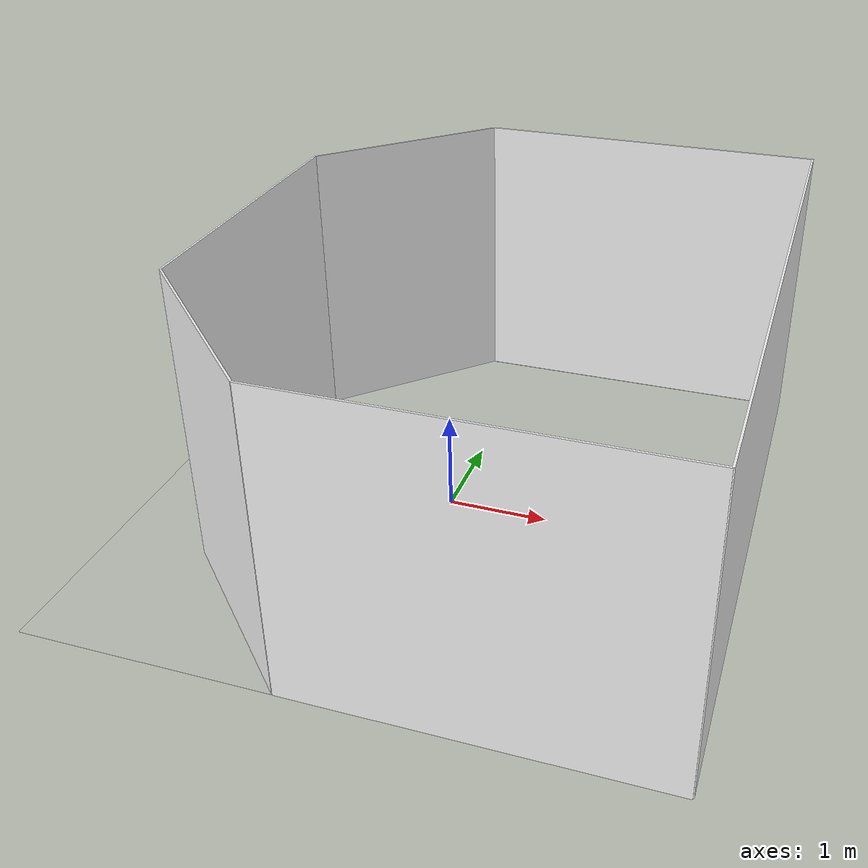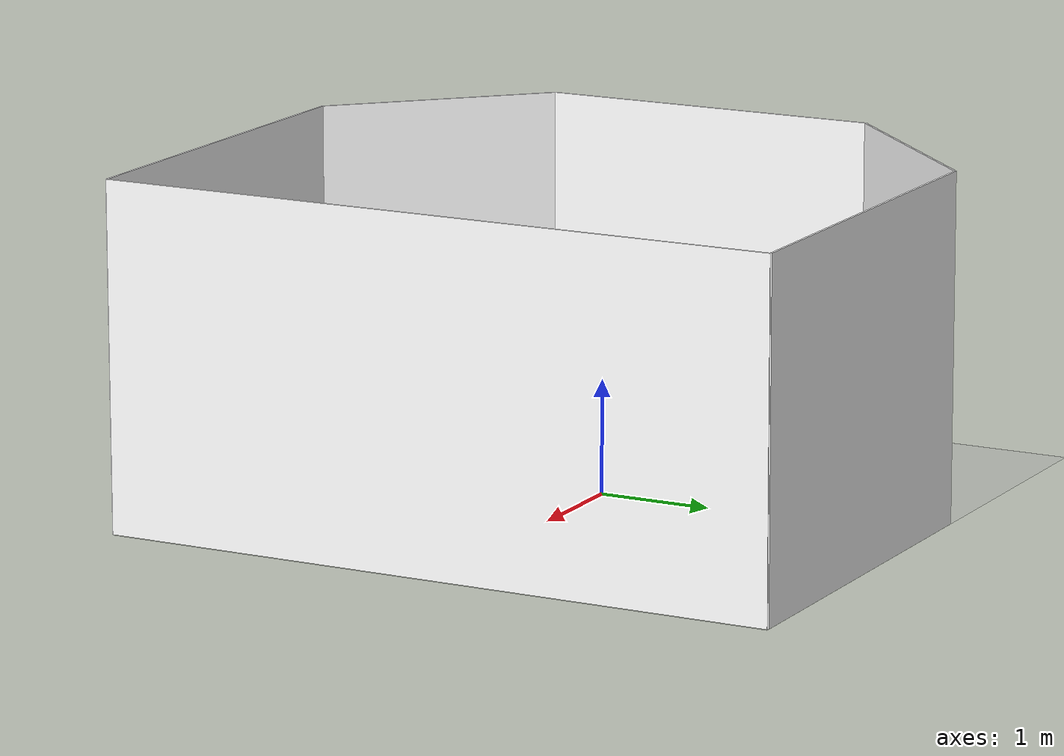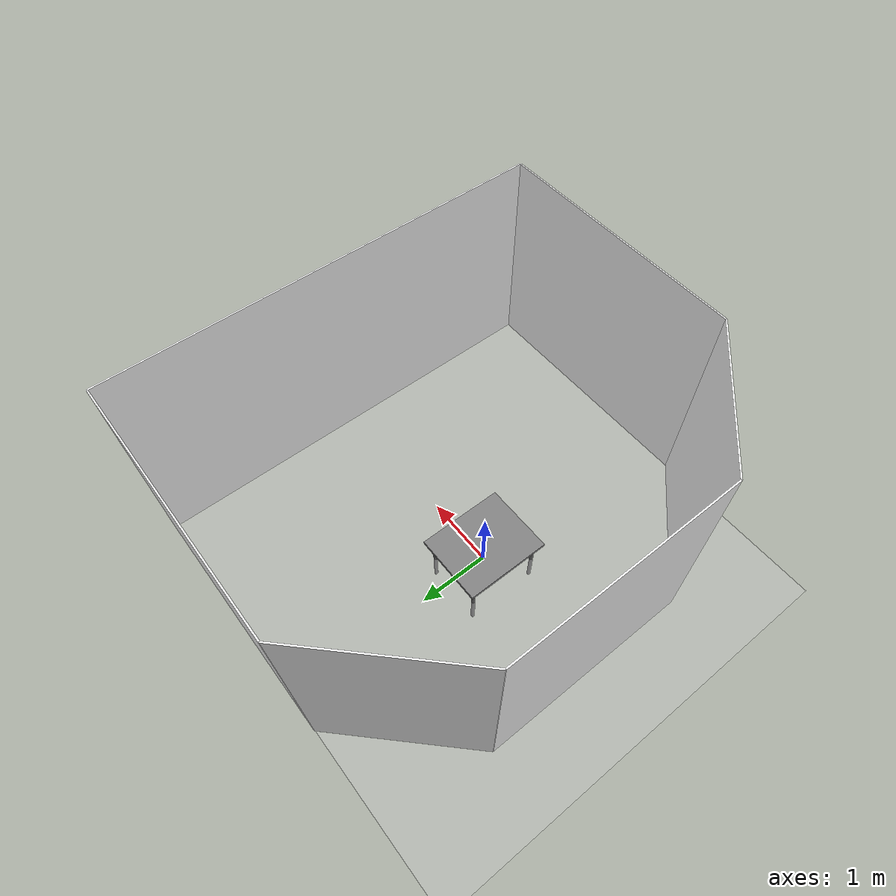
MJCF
<mujoco model="table_arena">
  <asset>
    <!-- Skybox -->
    <texture builtin="gradient" height="256" rgb1=".9 .9 1." rgb2=".2 .3 .4" type="skybox" width="256"/>

    <!-- Floor and Wall Materials (without PNG files) -->
    <material name="floorplane_mat" specular="0" shininess="0" reflectance="0.1" rgba="0.8 0.8 0.8 1"/>
    <material name="wall_mat" specular="0" shininess="0" reflectance="0" rgba="0.95 0.95 0.95 1"/>

    <!-- Table Materials (without PNG files) -->
    <material name="table_top_mat" specular="0.1" shininess="0.1" reflectance="0.2" rgba="0.7 0.7 0.7 1"/>
    <material name="table_leg_mat" specular="0.8" shininess="0.8" reflectance="0.5" rgba="0.4 0.4 0.4 1"/>

  </asset>
  <worldbody>
    <!-- Floor -->
    <geom condim="3" group="1" material="floorplane_mat" name="floor" pos="0 0 0" size="3 3 .125" type="plane"/>
    <!-- Walls (visual only) -->
    <geom pos="-1.25 2.25 1.5" quat="0.6532815 0.6532815 0.2705981 0.2705981" size="1.06 1.5 0.01" type="box" conaffinity="0" contype="0" group="1" name="wall_leftcorner_visual" material="wall_mat"/>
    <geom pos="-1.25 -2.25 1.5" quat="0.6532815 0.6532815 -0.2705981 -0.2705981" size="1.06 1.5 0.01" type="box" conaffinity="0" contype="0" group="1" name="wall_rightcorner_visual" material="wall_mat"/>
    <geom pos="1.25 3 1.5" quat="0.7071 0.7071 0 0" size="1.75 1.5 0.01" type="box" conaffinity="0" contype="0" group="1" name="wall_left_visual" material="wall_mat"/>
    <geom pos="1.25 -3 1.5" quat="0.7071 -0.7071 0 0" size="1.75 1.5 0.01" type="box" conaffinity="0" contype="0" group="1" name="wall_right_visual" material="wall_mat"/>
    <geom pos="-2 0 1.5" quat="0.5 0.5 0.5 0.5" size="1.5 1.5 0.01" type="box" conaffinity="0" contype="0" group="1" name="wall_rear_visual" material="wall_mat"/>
    <geom pos="3 0 1.5" quat="0.5 0.5 -0.5 -0.5" size="3 1.5 0.01" type="box" conaffinity="0" contype="0" group="1" name="wall_front_visual" material="wall_mat"/>
    <!-- Table body -->
    <body name="table" pos="0 0 0.4">
      <geom pos="0 0 0" size="0.5 0.6 0.025" type="box" group="0" name="table_collision" friction="1 0.005 0.0001"/>
      <geom name="table_visual" size="0.5 0.6 0.025" type="box" contype="0" conaffinity="0" group="1" material="table_top_mat"/>
      <!-- Legs (visual only) -->
      <geom name="table_leg1_visual" size="0.025 0.4375" pos="0.4 0.5 -0.4375" type="cylinder" contype="0" conaffinity="0" group="1" material="table_leg_mat"/>
      <geom name="table_leg2_visual" size="0.025 0.4375" pos="-0.4 0.5 -0.4375" type="cylinder" contype="0" conaffinity="0" group="1" material="table_leg_mat"/>
      <geom name="table_leg3_visual" size="0.025 0.4375" pos="-0.4 -0.5 -0.4375" type="cylinder" contype="0" conaffinity="0" group="1" material="table_leg_mat"/>
      <geom name="table_leg4_visual" size="0.025 0.4375" pos="0.4 -0.5 -0.4375" type="cylinder" contype="0" conaffinity="0" group="1" material="table_leg_mat"/>
    </body>
    <light pos="1.0 1.0 1.5" dir="-0.2 -0.2 -1" specular="0.3 0.3 0.3" directional="true" castshadow="false"/>
    <!-- front view -->
    <camera mode="fixed" name="frontview" pos="1.6 0 1.45" quat="0.56 0.43 0.43 0.56"/>
    <!-- bird view -->
    <camera mode="fixed" name="birdview" pos="-0.2 0 3.0" quat="0.7071 0 0 0.7071"/>
    <!-- agent view -->
    <camera mode="fixed" name="agentview" pos="0.5 0 1.35" quat="0.653 0.271 0.271 0.653"/>
    <!-- side view -->
    <camera mode="fixed" name="sideview" pos="-0.05651774593317116 1.2761224129427358 1.4879572214102434" quat="0.009905065491771751 0.006877963156909582 0.5912228352893879 0.806418094001364" />
  </worldbody>
</mujoco>
